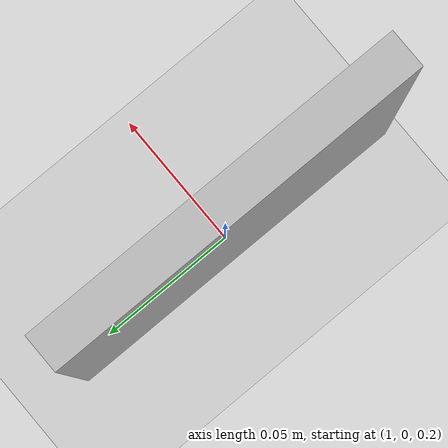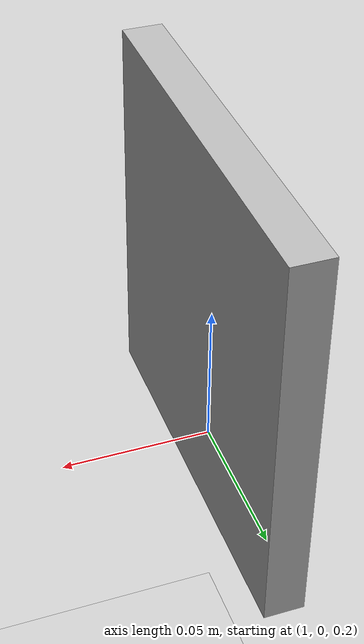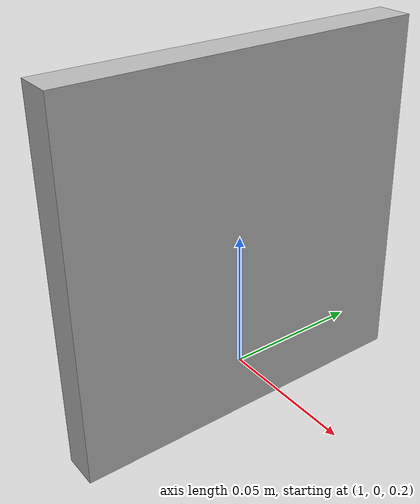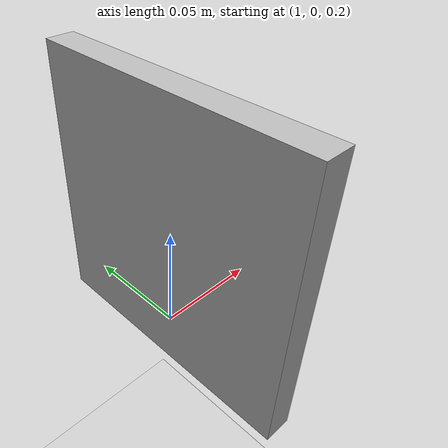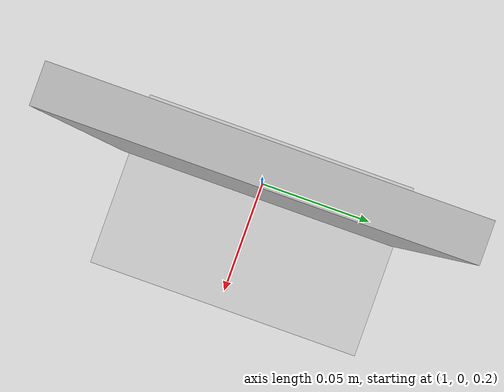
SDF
<?xml version="1.0" ?>

<sdf version="1.5">
	<world name="default">
		<!-- A global light source -->
		<light type="directional" name="my_light">
		    <pose>0 0 10 0 0 0</pose>
		    <diffuse>.9 .9 .9 1</diffuse>
		    <specular>.1 .1 .1 1</specular>
		    <attenuation>
		        <range>20</range>
		    </attenuation>
		    <direction>1 1 -1</direction>
		    <cast_shadows>true</cast_shadows>
		</light>

		<!-- A ground plane -->
		<include>
			<uri>model://ground_plane</uri>
		</include>

        	<!-- aruco landmark 0 -->
		<include>
			<uri>model://aruco_marker_0</uri>
			<pose>1 0 0.25 0 0 0</pose>
		</include>
	</world>
</sdf>

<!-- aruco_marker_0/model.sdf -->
<sdf version="1.5">
  <model name="aruco_marker_0">
    <static>true</static>
    <link name="base">
      <collision name="collision">
        <geometry>
          <box>
            <size>0.013125 0.13125 0.13125</size>
          </box>
        </geometry>
        <surface>
          <friction>
            <ode>
              <mu>100</mu>
              <mu2>50</mu2>
            </ode>
          </friction>
        </surface>
      </collision>

      <visual name="visual">
        <geometry>
          <box>
            <size>0.013125 0.13125 0.13125</size>
          </box>
        </geometry>
        <material>
          <script>
            <uri>model://aruco_marker_0/materials/scripts</uri>
            <uri>model://aruco_marker_0/materials/textures</uri>
            <name>aruco_marker_0/Diffuse</name>
          </script>
        </material>
      </visual>
    </link>

    <joint name="world_joint" type="fixed">
      <child>base</child>
      <parent>world</parent>
      <axis>
        <limit>
          <lower>0</lower>
          <upper>0</upper>
        </limit>
        <xyz>0 1 0</xyz>
        <dynamics>
          <damping>1.0</damping>
        </dynamics>
        <use_parent_model_frame>true</use_parent_model_frame>
      </axis>
      <physics>
        <ode>
          <cfm_damping>1</cfm_damping>
        </ode>
      </physics>
    </joint>
  </model>
</sdf>
